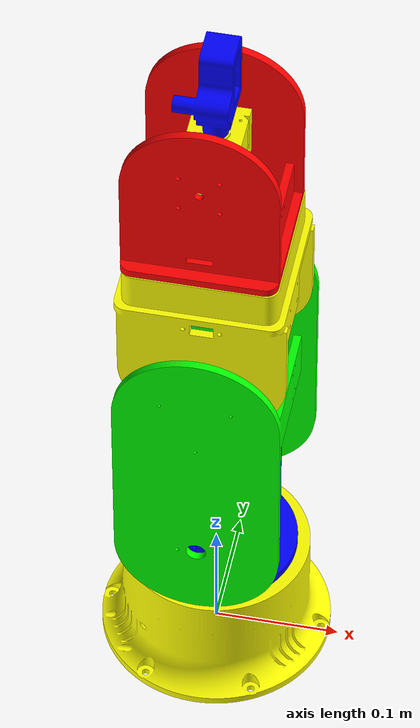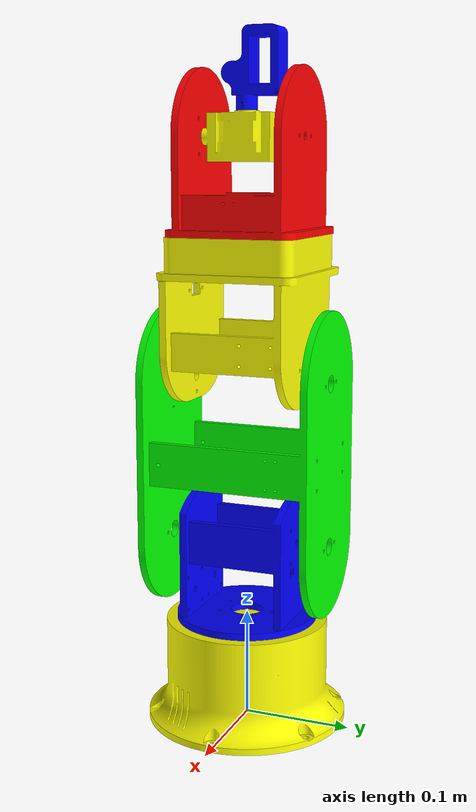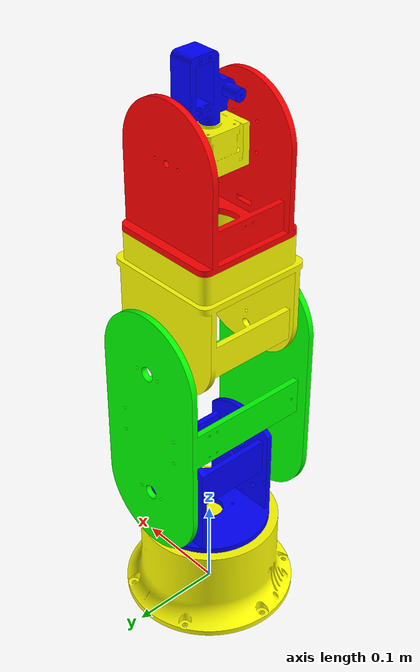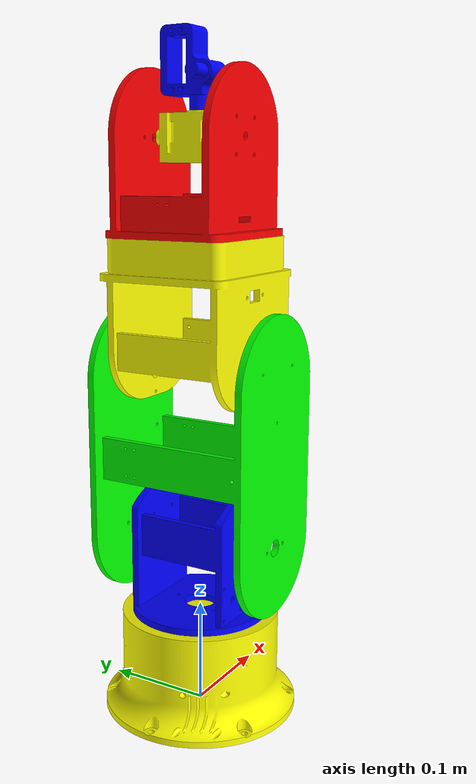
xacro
<?xml version="1.0"?>

<robot xmlns:xacro="http://ros.org/wiki/xacro" name="discoverbot">
  <property name="M_PI" value="3.1415926535897931" />
  <link name="db_base_link">
    <visual>
      <geometry>
        <mesh filename="package://discoverbot_description/meshes/db_base_link.STL"/>
      </geometry>
      <origin xyz="0 0 0" rpy="0 0 0"/>
      <material name="yellow">
        <color rgba="1 1 0 1"/>
      </material>
    </visual>
  </link>

  <link name="db_art1_link">
    <visual>
      <geometry>
        <mesh filename="package://discoverbot_description/meshes/db_art1_link.STL"/>
      </geometry>
      <origin xyz="0 0 0" rpy="0 0 1.571"/>
      <material name="blue">
        <color rgba="0 0 1 1"/>
      </material>
    </visual>

  </link>
  <link name="db_art2_link">
    <visual>
      <geometry>
        <mesh filename="package://discoverbot_description/meshes/db_art2_link.STL"/>
      </geometry>
      <origin xyz="0 0 0" rpy="0 0 0"/>
      <material name="green">
        <color rgba="0 1 0 1"/>
      </material>
    </visual>

  </link>

  <link name="db_art3_link" >
    <visual>
    	<geometry>
      	  <mesh filename="package://discoverbot_description/meshes/db_art3_link.STL"/>
	</geometry>
      	<origin xyz="0 0 0" rpy="0 0 0"/>
      	<material name="yellow">
        <color rgba="1 1 0 1"/>
        </material>
    </visual>

  </link>

  <link name="db_art4_link">
    <visual>
      <geometry>
	<mesh filename="package://discoverbot_description/meshes/db_art4_link.STL"/>
      </geometry>
      <origin xyz="-.003 .003 0" rpy="0 0 0"/>
      <material name="red">
        <color rgba="1 0 0 1"/>
      </material>
    </visual>

  </link>

  <link name="db_art5_link">
    <visual>
      <geometry>
	<mesh filename="package://discoverbot_description/meshes/db_art5_link.STL"/>
      </geometry>
      <origin xyz="0 0 0" rpy="0 0 0"/>
      <material name="yellow">
        <color rgba="1 1 0 1"/>
      </material>
    </visual>

  </link>

  <link name="db_art6_link">
    <visual>
      <geometry>
        <mesh filename="package://discoverbot_description/meshes/db_art6_link.STL"/>
      </geometry>
      <origin xyz="0 0 0" rpy="0 0 0"/>
      <material name="blue">
        <color rgba="0 0 1 1"/>
      </material>
    </visual>

  </link>

  <joint name="db_art1_joint" type="revolute">
    <parent link="db_base_link"/>
    <child link="db_art1_link"/>
    <origin xyz="0 0 .0962" rpy="0 0 0" />
    <axis xyz="0 0 1" />
    <limit effort="1.0" lower="-${M_PI}" upper="${M_PI}" velocity="2.0"/>
  </joint>

  <joint name="db_art2_joint" type="revolute">
    <parent link="db_art1_link"/>
    <child link="db_art2_link"/>
    <origin xyz="0 0 .07635" rpy="0 0 0" />
    <axis xyz="0 1 0" />
    <limit effort="1.0" lower="-${M_PI/2}" upper="${M_PI/2}" velocity="2.0"/>
  </joint>

  <joint name="db_art3_joint" type="revolute">
    <parent link="db_art2_link"/>
    <child link="db_art3_link"/>
    <origin xyz="0 0 .1500" rpy="0 0 0" />
    <axis xyz="0 1 0" />
    <limit effort="1.0" lower="-${M_PI}" upper="${M_PI}" velocity="2.0"/>
  </joint>

  <joint name="db_art4_joint" type="revolute">
    <parent link="db_art3_link"/>
    <child link="db_art4_link"/>
    <origin xyz="0 0 .1292" rpy="0 0 0" />
    <axis xyz="0 0 1" />
    <limit effort="1.0" lower="-${M_PI}" upper="${M_PI}" velocity="2.0"/>
  </joint>

  <joint name="db_art5_joint" type="revolute">
    <parent link="db_art4_link"/>
    <child link="db_art5_link"/>
    <origin xyz="0 0 0.08635" rpy="0 0 0" />
    <axis xyz="0 1 0" />
    <limit effort="1.0" lower="-${M_PI/2}" upper="${M_PI/2}" velocity="2.0"/>
  </joint>

  <joint name="db_art6_joint" type="revolute">
    <parent link="db_art5_link"/>
    <child link="db_art6_link"/>
    <origin xyz="0 0 .0220" rpy="0 0 0" />
    <axis xyz="0 0 1" />
    <limit effort="1.0" lower="-${M_PI}" upper="${M_PI}" velocity="2.0"/>
  </joint>

</robot>
